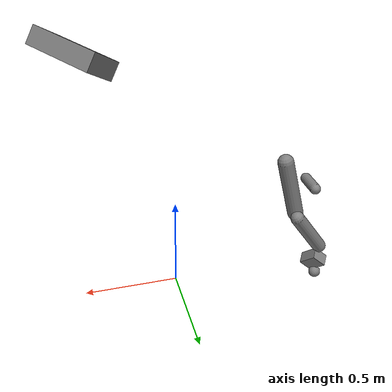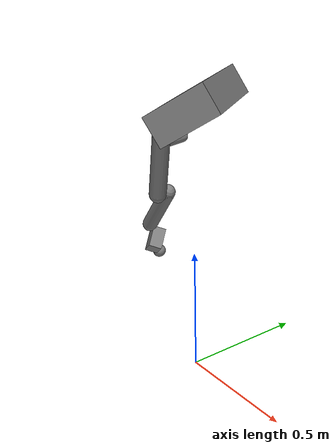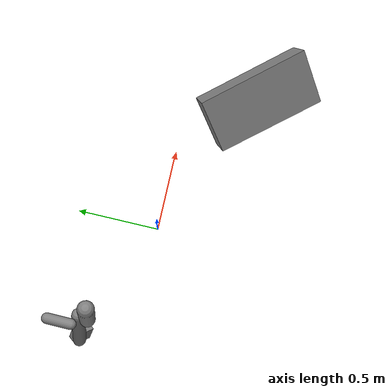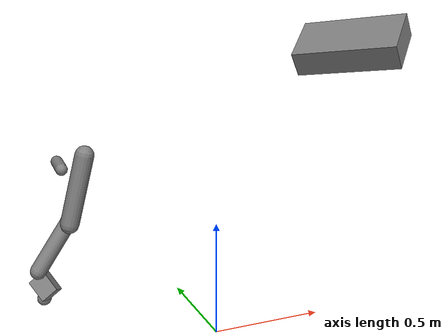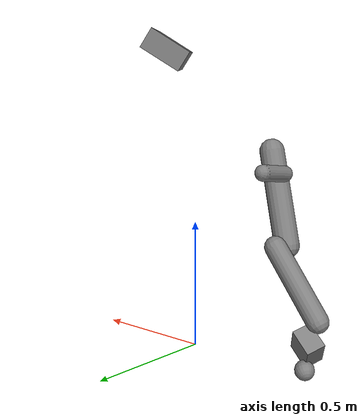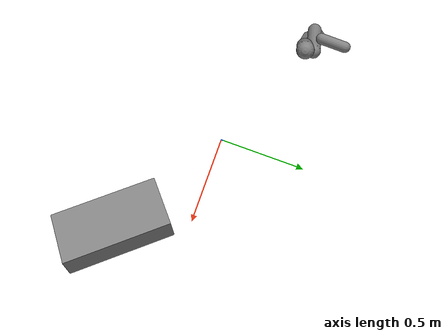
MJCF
<mujoco model="zoo">
  <compiler angle="radian"/>
  <option timestep="0.004" gravity="0.3 -0.2 -9.81" integrator="RK4"/>
  <worldbody>
    <body name="float" pos="0.4 -0.3 1.2" euler="0.3 -0.5 0.8">
      <joint name="root" type="free" stiffness="0.3" damping="0.02" armature="0.01"/>
      <inertial pos="0.05 -0.02 0.03" mass="2.5" diaginertia="0.04 0.07 0.09" euler="0.2 0.1 -0.4"/>
      <geom name="float_box" type="box" size="0.1 0.2 0.05" pos="0.05 -0.02 0.03"/>
    </body>

    <body name="base" pos="-0.5 0.2 0.8" euler="0.1 0.4 -0.2">
      <joint name="ball" type="ball" pos="0.03 -0.02 0.05" stiffness="0.8" damping="0.05" armature="0.02"/>
      <geom name="base_geom" type="capsule" fromto="0 0 0 0.05 0 -0.3" size="0.04" mass="1.2"/>
      <body name="mid" pos="0.05 0.05 -0.3" euler="-0.3 0.2 0.5">
        <joint name="elbow" type="hinge" axis="0.3 0.8 -0.5" pos="0.02 0 0.04" stiffness="1.5" damping="0.1" armature="0.01"/>
        <geom name="mid_geom" type="capsule" fromto="0 0 0 0.02 0.03 -0.25" size="0.035" mass="0.8"/>
        <body name="tip" pos="0.1 0 -0.25" euler="0.4 0.1 0.6">
          <joint name="slider" type="slide" axis="0.6 -0.2 0.77" stiffness="2" damping="0.3" armature="0.05"/>
          <geom name="tip_geom" type="box" size="0.03 0.05 0.04" pos="0 0.01 -0.05" mass="0.5"/>
          <body name="marker" pos="0.04 -0.02 -0.1" euler="0.2 -0.3 0.1">
            <geom name="marker_geom" type="sphere" size="0.03" mass="0.2"/>
          </body>
        </body>
      </body>
      <body name="wrist" pos="-0.06 0.04 -0.1" euler="0.5 -0.2 0.3">
        <joint name="wrist_hinge" type="hinge" axis="0.1 -0.6 0.8" stiffness="0.4" damping="0.15" armature="0.02"/>
        <joint name="wrist_slide" type="slide" axis="-0.5 0.5 0.7" stiffness="1.1" damping="0.2" armature="0.03"/>
        <geom name="wrist_geom" type="capsule" fromto="0 0 0 0 0.1 -0.05" size="0.025" mass="0.4"/>
      </body>
    </body>
  </worldbody>
  <actuator>
    <motor name="elbow_motor" joint="elbow" gear="2.5" ctrlrange="-1 1"/>
    <position name="slider_servo" joint="slider" kp="30" gear="2" ctrlrange="-0.2 0.2"/>
  </actuator>
</mujoco>
